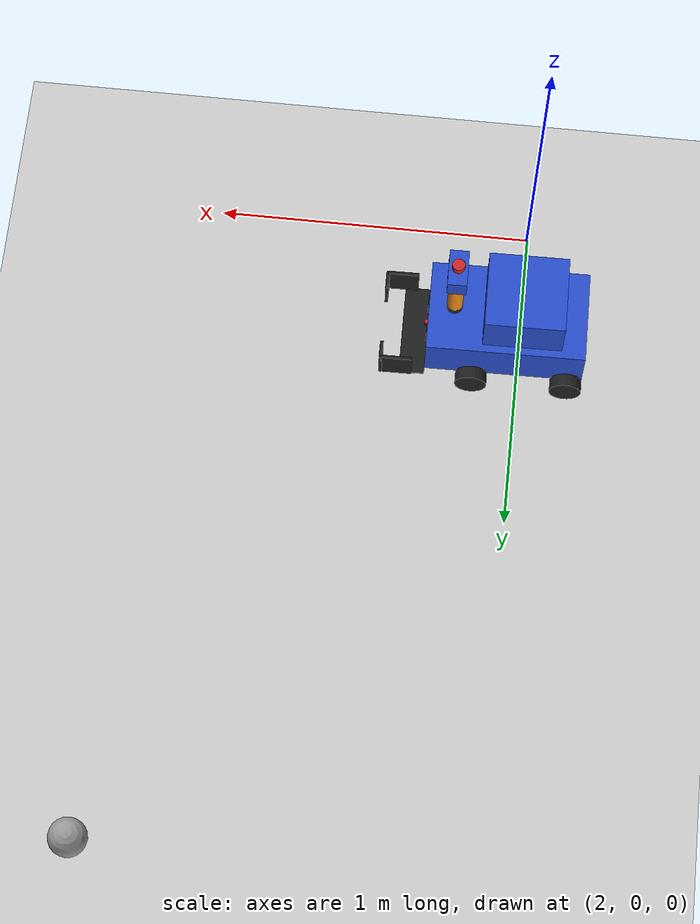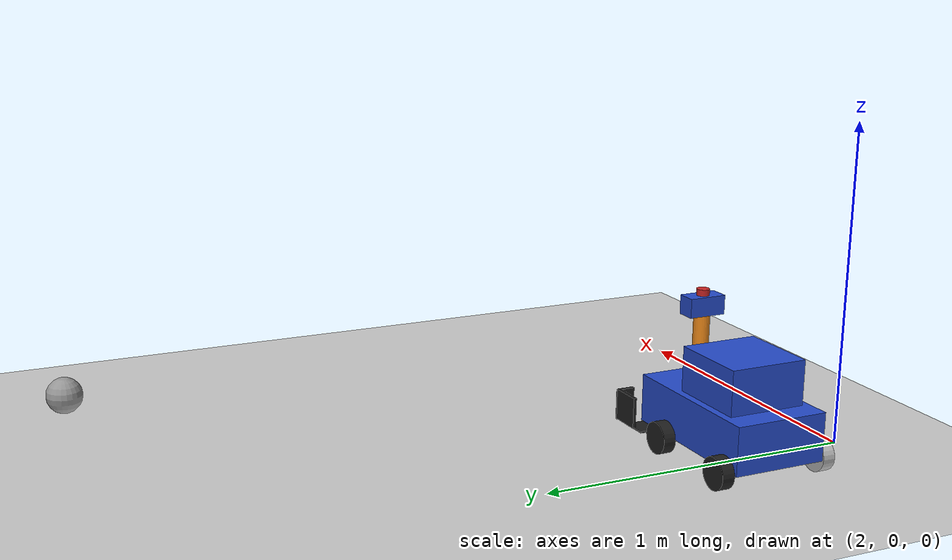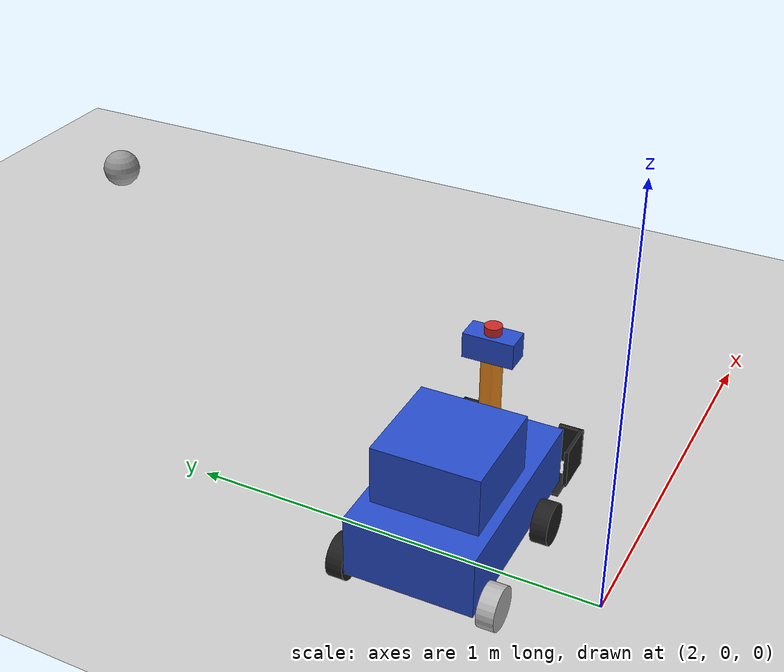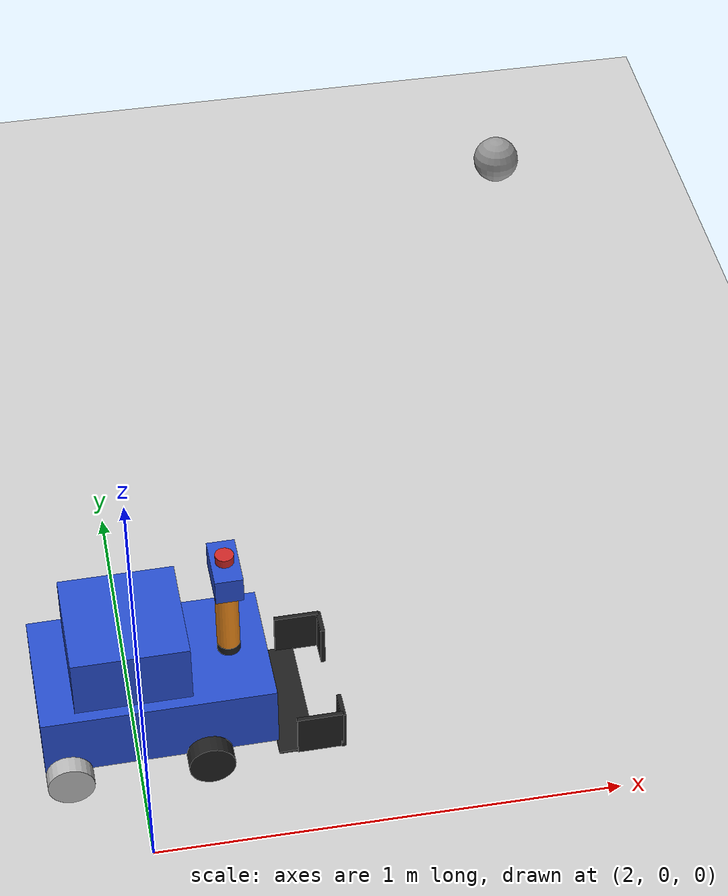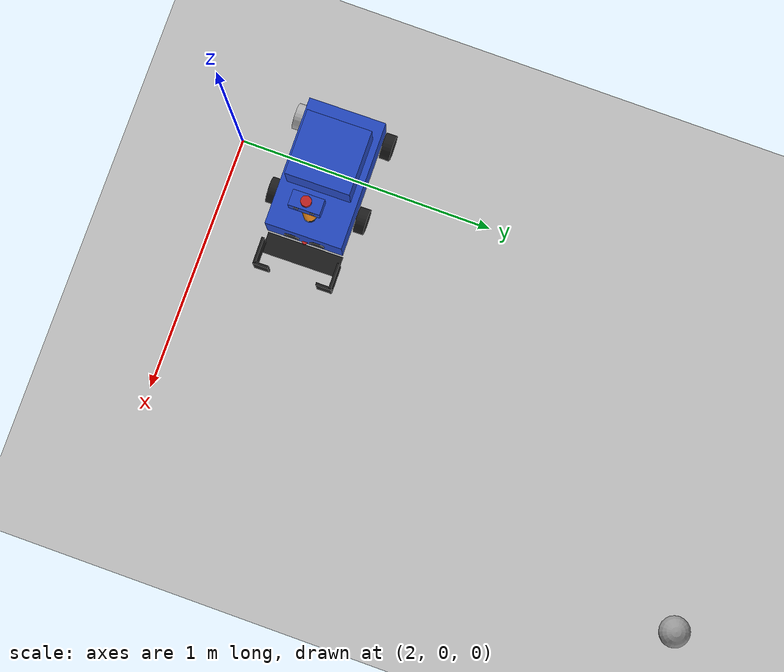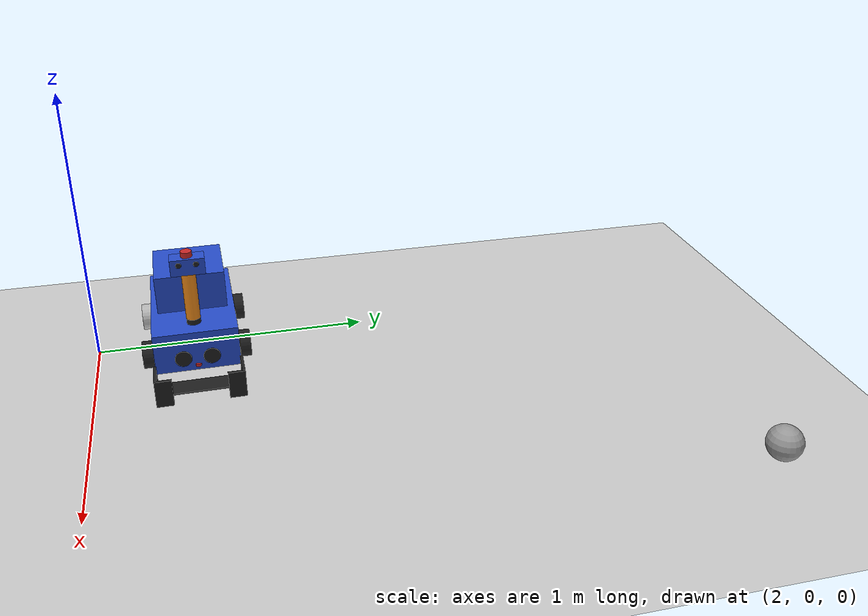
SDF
<sdf version="1.7">
 <world name="default">
  <model name="ground_plane">
   <static>1</static>
   <link name="link">
    <collision name="collision">
     <geometry><plane><normal>0 0 1</normal><size>100 100</size></plane></geometry>
     <surface>
      <contact><collide_bitmask>65535</collide_bitmask></contact>
      <friction><ode><mu>100</mu><mu2>50</mu2></ode></friction>
     </surface>
    </collision>
    <visual name="visual">
     <cast_shadows>0</cast_shadows>
     <geometry><plane><normal>0 0 1</normal><size>100 100</size></plane></geometry>
     <material>
      <script><uri>file://media/materials/scripts/gazebo.material</uri><name>Gazebo/Grey</name></script>
     </material>
    </visual>
   </link>
  </model>
  <model name="ros2_ws">
   <link name="base_link">
    <inertial>
     <pose>0.212828 4e-06 0.090281 0 -0 0</pose>
     <mass>13.112</mass>
     <inertia>
      <ixx>0.231664</ixx>
      <ixy>-1.16086e-05</ixy>
      <ixz>0.0239536</ixz>
      <iyy>0.312785</iyy>
      <iyz>2.01407e-06</iyz>
      <izz>0.366143</izz>
     </inertia>
    </inertial>
    <collision name="base_link_fixed_joint_lump__chassis_collision">
     <pose>0.2 0 0.075 0 -0 0</pose>
     <geometry><box><size>0.5 0.3 0.15</size></box></geometry>
    </collision>
    <collision name="base_link_fixed_joint_lump__back_collision_1">
     <pose>0.15 0 0.22 0 -0 0</pose>
     <geometry><box><size>0.25 0.25 0.14</size></box></geometry>
    </collision>
    <collision name="base_link_fixed_joint_lump__laser_framenew_collision_2">
     <pose>0.45 0 0.02 0 -0 0</pose>
     <geometry><cylinder><length>0.01</length><radius>0.01</radius></cylinder></geometry>
    </collision>
    <collision name="base_link_fixed_joint_lump__support_collision_3">
     <pose>0.37 0 0.16 0 -0 0</pose>
     <geometry><cylinder><length>0.02</length><radius>0.025</radius></cylinder></geometry>
    </collision>
    <collision name="base_link_fixed_joint_lump__support1_collision_4">
     <pose>0.37 0 0.26 0 -0 0</pose>
     <geometry><cylinder><length>0.18</length><radius>0.025</radius></cylinder></geometry>
    </collision>
    <collision name="base_link_fixed_joint_lump__box_collision_5">
     <pose>0.37 0 0.38 0 -0 0</pose>
     <geometry><box><size>0.06 0.12 0.06</size></box></geometry>
    </collision>
    <collision name="base_link_fixed_joint_lump__laser_frame_collision_6">
     <pose>0.37 0 0.42 0 -0 0</pose>
     <geometry><cylinder><length>0.02</length><radius>0.02</radius></cylinder></geometry>
    </collision>
    <collision name="base_link_fixed_joint_lump__vc2_collision_7">
     <pose>0.445 0.05 0.05 3.14159 1.57079 3.14159</pose>
     <geometry><cylinder><length>0.015</length><radius>0.03</radius></cylinder></geometry>
    </collision>
    <collision name="base_link_fixed_joint_lump__dum_left_wheel_collision_8">
     <pose>0.3 0.175 0 1.5708 -0 0</pose>
     <geometry><cylinder><length>0.04</length><radius>0.05</radius></cylinder></geometry>
     <surface><friction><ode><mu>0.001</mu><mu2>0.001</mu2></ode></friction></surface>
    </collision>
    <collision name="base_link_fixed_joint_lump__dum_right_wheel_collision_9">
     <pose>0.3 -0.175 0 1.5708 -0 0</pose>
     <geometry><cylinder><length>0.04</length><radius>0.05</radius></cylinder></geometry>
     <surface><friction><ode><mu>0.001</mu><mu2>0.001</mu2></ode></friction></surface>
    </collision>
    <visual name="base_link_fixed_joint_lump__chassis_visual">
     <pose>0.2 0 0.075 0 -0 0</pose>
     <geometry><box><size>0.5 0.3 0.15</size></box></geometry>
     <material>
      <script><name>Gazebo/Blue</name><uri>file://media/materials/scripts/gazebo.material</uri></script>
     </material>
    </visual>
    <visual name="base_link_fixed_joint_lump__back_visual_1">
     <pose>0.15 0 0.22 0 -0 0</pose>
     <geometry><box><size>0.25 0.25 0.14</size></box></geometry>
     <material>
      <script><name>Gazebo/Blue</name><uri>file://media/materials/scripts/gazebo.material</uri></script>
     </material>
    </visual>
    <visual name="base_link_fixed_joint_lump__laser_framenew_visual_2">
     <pose>0.45 0 0.02 0 -0 0</pose>
     <geometry><cylinder><length>0.01</length><radius>0.01</radius></cylinder></geometry>
     <material>
      <script><name>Gazebo/Red</name><uri>file://media/materials/scripts/gazebo.material</uri></script>
     </material>
    </visual>
    <visual name="base_link_fixed_joint_lump__support_visual_3">
     <pose>0.37 0 0.16 0 -0 0</pose>
     <geometry><cylinder><length>0.02</length><radius>0.025</radius></cylinder></geometry>
     <material>
      <script><name>Gazebo/Black</name><uri>file://media/materials/scripts/gazebo.material</uri></script>
     </material>
    </visual>
    <visual name="base_link_fixed_joint_lump__support1_visual_4">
     <pose>0.37 0 0.26 0 -0 0</pose>
     <geometry><cylinder><length>0.18</length><radius>0.025</radius></cylinder></geometry>
     <material>
      <script><name>Gazebo/Orange</name><uri>file://media/materials/scripts/gazebo.material</uri></script>
     </material>
    </visual>
    <visual name="base_link_fixed_joint_lump__box_visual_5">
     <pose>0.37 0 0.38 0 -0 0</pose>
     <geometry><box><size>0.06 0.12 0.06</size></box></geometry>
     <material>
      <script><name>Gazebo/Blue</name><uri>file://media/materials/scripts/gazebo.material</uri></script>
     </material>
    </visual>
    <visual name="base_link_fixed_joint_lump__face_link_visual_6">
     <pose>0.4 0.03 0.39 3.14159 1.57079 3.14159</pose>
     <geometry><cylinder><length>0.002</length><radius>0.01</radius></cylinder></geometry>
     <material>
      <script><name>Gazebo/Black</name><uri>file://media/materials/scripts/gazebo.material</uri></script>
     </material>
    </visual>
    <visual name="base_link_fixed_joint_lump__face_link_visual_7">
     <pose>0.4 -0.03 0.39 3.14159 1.57079 3.14159</pose>
     <geometry><cylinder><length>0.002</length><radius>0.01</radius></cylinder></geometry>
     <material>
      <script><name>Gazebo/Black</name><uri>file://media/materials/scripts/gazebo.material</uri></script>
     </material>
    </visual>
    <visual name="base_link_fixed_joint_lump__laser_frame_visual_8">
     <pose>0.37 0 0.42 0 -0 0</pose>
     <geometry><cylinder><length>0.02</length><radius>0.02</radius></cylinder></geometry>
     <material>
      <script><name>Gazebo/Red</name><uri>file://media/materials/scripts/gazebo.material</uri></script>
     </material>
    </visual>
    <visual name="base_link_fixed_joint_lump__camera_link_visual_9">
     <pose>0.37 0 0.43 0 -0 0</pose>
     <geometry><box><size>1e-05 1e-05 1e-05</size></box></geometry>
     <material>
      <script><name>Gazebo/Red</name><uri>file://media/materials/scripts/gazebo.material</uri></script>
     </material>
    </visual>
    <visual name="base_link_fixed_joint_lump__vc2_visual_10">
     <pose>0.445 0.05 0.05 3.14159 1.57079 3.14159</pose>
     <geometry><cylinder><length>0.015</length><radius>0.03</radius></cylinder></geometry>
     <material>
      <script><name>Gazebo/Black</name><uri>file://media/materials/scripts/gazebo.material</uri></script>
     </material>
    </visual>
    <visual name="base_link_fixed_joint_lump__dum_left_wheel_visual_11">
     <pose>0.3 0.175 0 1.5708 -0 0</pose>
     <geometry><cylinder><length>0.04</length><radius>0.05</radius></cylinder></geometry>
     <material>
      <script><name>Gazebo/Black</name><uri>file://media/materials/scripts/gazebo.material</uri></script>
     </material>
    </visual>
    <visual name="base_link_fixed_joint_lump__dum_right_wheel_visual_12">
     <pose>0.3 -0.175 0 1.5708 -0 0</pose>
     <geometry><cylinder><length>0.04</length><radius>0.05</radius></cylinder></geometry>
     <material>
      <script><name>Gazebo/Black</name><uri>file://media/materials/scripts/gazebo.material</uri></script>
     </material>
    </visual>
    <sensor name="laser" type="ray">
     <visualize>1</visualize>
     <update_rate>4</update_rate>
     <ray>
      <scan>
       <horizontal>
        <samples>10</samples>
        <min_angle>0</min_angle>
        <max_angle>0.1</max_angle>
        <resolution>1</resolution>
       </horizontal>
       <vertical><samples>1</samples><min_angle>0</min_angle><max_angle>0</max_angle></vertical>
      </scan>
      <range><min>0.15</min><max>12</max></range>
     </ray>
     <plugin name="laser_controller" filename="libgazebo_ros_ray_sensor.so">
      <ros><argument>~/out:=scan</argument></ros>
      <output_type>sensor_msgs/LaserScan</output_type>
      <frame_name>laser_frame</frame_name>
     </plugin>
     <pose>0.45 0 0.02 0 -0 0</pose>
    </sensor>
    <sensor name="camera1" type="multicamera">
     <update_rate>60</update_rate>
     <visualize>1</visualize>
     <camera name="left">
      <horizontal_fov>1.39626</horizontal_fov>
      <image><width>640</width><height>480</height><format>R8G8B8</format></image>
      <clip><near>0.02</near><far>300</far></clip>
      <noise><type>gaussian</type><mean>0</mean><stddev>0.007</stddev></noise>
     </camera>
     <camera name="right">
      <pose>0 0.4 0 0 -0 0</pose>
      <horizontal_fov>0.7</horizontal_fov>
      <image><width>320</width><height>480</height><format>R8G8B8</format></image>
      <clip><near>0.02</near><far>300</far></clip>
      <noise><type>gaussian</type><mean>0</mean><stddev>0.007</stddev></noise>
     </camera>
     <plugin name="camera_controller" filename="libgazebo_ros_camera.so">
      <ros>
       <namespace>demo_cam</namespace>
       <remapping>mycamera/left/image_raw:=mycamera/left/image_demo</remapping>
       <remapping>mycamera/right/image_raw:=mycamera/right/image_demo</remapping>
       <remapping>mycamera/left/camera_info:=mycamera/left/camera_info_demo</remapping>
       <remapping>mycamera/right/camera_info:=mycamera/right/camera_info_demo</remapping>
      </ros>
      <camera_name>mycamera</camera_name>
     </plugin>
     <pose>0.37 0 0.43 0 -0 0</pose>
    </sensor>
    <sensor name="camera" type="depth">
     <visualize>1</visualize>
     <update_rate>10</update_rate>
     <camera>
      <horizontal_fov>1.089</horizontal_fov>
      <image><format>B8G8R8</format><width>640</width><height>480</height></image>
      <clip><near>0.05</near><far>8</far></clip>
     </camera>
     <plugin name="camera_controller" filename="libgazebo_ros_camera.so">
      <frame_name>camera_link_optical</frame_name>
      <min_depth>0.1</min_depth>
      <max_depth>100.0</max_depth>
     </plugin>
     <pose>0.37 0 0.43 0 -0 0</pose>
    </sensor>
   </link>
   <joint name="lift_joint" type="prismatic">
    <pose relative_to="base_link">0.34 0 -0.0449 0 -0 0</pose>
    <parent>base_link</parent>
    <child>lift</child>
    <axis>
     <xyz>0 0 1</xyz>
     <limit><lower>0</lower><upper>0.11</upper><effort>100</effort><velocity>100</velocity></limit>
     <dynamics><spring_reference>0</spring_reference><spring_stiffness>0</spring_stiffness></dynamics>
    </axis>
   </joint>
   <link name="lift">
    <pose relative_to="lift_joint">0 0 0 0 -0 0</pose>
    <inertial>
     <pose>0.15 0 0.002 0 -0 0</pose>
     <mass>0.1</mass>
     <inertia>
      <ixx>0.000750208</ixx>
      <ixy>0</ixy>
      <ixz>0</ixz>
      <iyy>5.35417e-05</iyy>
      <iyz>0</iyz>
      <izz>0.000803333</izz>
     </inertia>
    </inertial>
    <collision name="lift_collision">
     <pose>0.15 0 0.005 0 -0 0</pose>
     <geometry><box><size>0.08 0.3 1e-05</size></box></geometry>
     <surface><friction><ode><mu>1e-05</mu><mu2>1e-05</mu2></ode></friction></surface>
    </collision>
    <visual name="lift_visual">
     <pose>0.15 0 0.002 0 -0 0</pose>
     <geometry><box><size>0.08 0.3 0.005</size></box></geometry>
     <material>
      <script><name>Gazebo/Black</name><uri>file://media/materials/scripts/gazebo.material</uri></script>
     </material>
    </visual>
   </link>
   <joint name="forkone_joint" type="prismatic">
    <pose relative_to="lift">0.05 -0.15 0.05 0 -0 0</pose>
    <parent>lift</parent>
    <child>forkone</child>
    <axis>
     <xyz>0 1 0</xyz>
     <limit><lower>0</lower><upper>0.085</upper><effort>1000</effort><velocity>10</velocity></limit>
     <dynamics><spring_reference>0</spring_reference><spring_stiffness>0</spring_stiffness></dynamics>
    </axis>
   </joint>
   <link name="forkone">
    <pose relative_to="forkone_joint">0 0 0 0 -0 0</pose>
    <inertial>
     <pose>0.175 0.0125 0.001 0 -0 0</pose>
     <mass>0.2</mass>
     <inertia>
      <ixx>0.00022895</ixx>
      <ixy>-6.25e-05</ixy>
      <ixz>5e-06</ixz>
      <iyy>0.000376033</iyy>
      <iyz>2.5e-06</iyz>
      <izz>0.00027125</izz>
     </inertia>
    </inertial>
    <collision name="forkone_collision">
     <pose>0.15 0 0.002 0 -0 0</pose>
     <geometry><box><size>0.1 0.01 0.1</size></box></geometry>
     <surface><friction><ode><mu>0.10001</mu><mu2>0.10001</mu2></ode></friction></surface>
    </collision>
    <collision name="forkone_fixed_joint_lump__cap1_collision_1">
     <pose>0.2 0.025 0 0 -0 0</pose>
     <geometry><box><size>0.01 0.06 0.1</size></box></geometry>
    </collision>
    <visual name="forkone_visual">
     <pose>0.15 0 0.002 0 -0 0</pose>
     <geometry><box><size>0.1 0.01 0.1</size></box></geometry>
     <material>
      <script><name>Gazebo/Black</name><uri>file://media/materials/scripts/gazebo.material</uri></script>
     </material>
    </visual>
    <visual name="forkone_fixed_joint_lump__cap1_visual_1">
     <pose>0.2 0.025 0 0 -0 0</pose>
     <geometry><box><size>0.01 0.06 0.1</size></box></geometry>
     <material>
      <script><name>Gazebo/Black</name><uri>file://media/materials/scripts/gazebo.material</uri></script>
     </material>
    </visual>
   </link>
   <joint name="forktwo_joint" type="prismatic">
    <pose relative_to="lift">0.05 0.15 0.05 0 -0 0</pose>
    <parent>lift</parent>
    <child>forktwo</child>
    <axis>
     <xyz>0 -1 0</xyz>
     <limit><lower>0</lower><upper>0.085</upper><effort>1000</effort><velocity>10</velocity></limit>
     <dynamics><spring_reference>0</spring_reference><spring_stiffness>0</spring_stiffness></dynamics>
    </axis>
   </joint>
   <link name="forktwo">
    <pose relative_to="forktwo_joint">0 0 0 0 -0 0</pose>
    <inertial>
     <pose>0.175 -0.0125 0.001 0 -0 0</pose>
     <mass>0.2</mass>
     <inertia>
      <ixx>0.000219783</ixx>
      <ixy>6.25e-05</ixy>
      <ixz>5e-06</ixz>
      <iyy>0.000376033</iyy>
      <iyz>-2.5e-06</iyz>
      <izz>0.000262083</izz>
     </inertia>
    </inertial>
    <collision name="forktwo_collision">
     <pose>0.15 0 0.002 0 -0 0</pose>
     <geometry><box><size>0.1 0.01 0.1</size></box></geometry>
     <surface><friction><ode><mu>0.10001</mu><mu2>0.10001</mu2></ode></friction></surface>
    </collision>
    <collision name="forktwo_fixed_joint_lump__cap_collision_1">
     <pose>0.2 -0.025 0 0 -0 0</pose>
     <geometry><box><size>0.01 0.06 0.1</size></box></geometry>
    </collision>
    <visual name="forktwo_visual">
     <pose>0.15 0 0.002 0 -0 0</pose>
     <geometry><box><size>0.1 0.01 0.1</size></box></geometry>
     <material>
      <script><name>Gazebo/Black</name><uri>file://media/materials/scripts/gazebo.material</uri></script>
     </material>
    </visual>
    <visual name="forktwo_fixed_joint_lump__cap_visual_1">
     <pose>0.2 -0.025 0 0 -0 0</pose>
     <geometry><box><size>0.01 0.06 0.1</size></box></geometry>
     <material>
      <script><name>Gazebo/Black</name><uri>file://media/materials/scripts/gazebo.material</uri></script>
     </material>
    </visual>
   </link>
   <joint name="vc1_joint" type="prismatic">
    <pose relative_to="base_link">0.445 -0.05 0.05 3.14159 1.57079 3.14159</pose>
    <parent>base_link</parent>
    <child>vc1</child>
    <axis>
     <xyz>0 1 0</xyz>
     <limit><lower>0</lower><upper>0</upper><effort>100</effort><velocity>10</velocity></limit>
     <dynamics><spring_reference>0</spring_reference><spring_stiffness>0</spring_stiffness></dynamics>
    </axis>
   </joint>
   <link name="vc1">
    <pose relative_to="vc1_joint">0 0 0 0 -0 0</pose>
    <inertial>
     <mass>0.001</mass>
     <inertia>
      <ixx>2.4375e-07</ixx>
      <ixy>0</ixy>
      <ixz>0</ixz>
      <iyy>2.4375e-07</iyy>
      <iyz>0</iyz>
      <izz>4.5e-07</izz>
     </inertia>
    </inertial>
    <collision name="vc1_collision">
     <geometry><cylinder><length>0.015</length><radius>0.03</radius></cylinder></geometry>
    </collision>
    <visual name="vc1_visual">
     <geometry><cylinder><length>0.015</length><radius>0.03</radius></cylinder></geometry>
     <material>
      <script><name>Gazebo/Black</name><uri>file://media/materials/scripts/gazebo.material</uri></script>
     </material>
    </visual>
   </link>
   <joint name="left_wheel_joint" type="revolute">
    <pose relative_to="base_link">0 0.175 0 -1.5708 0 0</pose>
    <parent>base_link</parent>
    <child>left_wheel</child>
    <axis>
     <xyz>0 0 1</xyz>
     <limit><lower>-1e+16</lower><upper>1e+16</upper></limit>
     <dynamics><spring_reference>0</spring_reference><spring_stiffness>0</spring_stiffness></dynamics>
    </axis>
   </joint>
   <link name="left_wheel">
    <pose relative_to="left_wheel_joint">0 0 0 0 -0 0</pose>
    <inertial>
     <mass>1.1</mass>
     <inertia>
      <ixx>0.000834167</ixx>
      <ixy>0</ixy>
      <ixz>0</ixz>
      <iyy>0.000834167</iyy>
      <iyz>0</iyz>
      <izz>0.001375</izz>
     </inertia>
    </inertial>
    <collision name="left_wheel_collision">
     <geometry><cylinder><length>0.04</length><radius>0.05</radius></cylinder></geometry>
    </collision>
    <visual name="left_wheel_visual">
     <geometry><cylinder><length>0.04</length><radius>0.05</radius></cylinder></geometry>
     <material>
      <script><name>Gazebo/Black</name><uri>file://media/materials/scripts/gazebo.material</uri></script>
     </material>
    </visual>
   </link>
   <joint name="right_wheel_joint" type="revolute">
    <pose relative_to="base_link">0 -0.175 0 1.5708 -0 0</pose>
    <parent>base_link</parent>
    <child>right_wheel</child>
    <axis>
     <xyz>0 0 -1</xyz>
     <limit><lower>-1e+16</lower><upper>1e+16</upper></limit>
     <dynamics><spring_reference>0</spring_reference><spring_stiffness>0</spring_stiffness></dynamics>
    </axis>
   </joint>
   <link name="right_wheel">
    <pose relative_to="right_wheel_joint">0 0 0 0 -0 0</pose>
    <inertial>
     <mass>1.1</mass>
     <inertia>
      <ixx>0.00190667</ixx>
      <ixy>0</ixy>
      <ixz>0</ixz>
      <iyy>0.00190667</iyy>
      <iyz>0</iyz>
      <izz>0.00352</izz>
     </inertia>
    </inertial>
    <collision name="right_wheel_collision">
     <geometry><cylinder><length>0.04</length><radius>0.05</radius></cylinder></geometry>
    </collision>
    <visual name="right_wheel_visual">
     <geometry><cylinder><length>0.04</length><radius>0.05</radius></cylinder></geometry>
    </visual>
   </link>
   <plugin name="gazebo_ros_joint_pose_trajectory" filename="libgazebo_ros_joint_pose_trajectory.so">
    <ros><namespace>/vision</namespace><remapping>set_joint_trajectory:=set_trajectory_demo</remapping></ros>
    <update_rate>2</update_rate>
   </plugin>
   <plugin name="vacuum_gripper" filename="libgazebo_ros_vacuum_gripper.so">
    <ros>
     <namespace>/demo</namespace>
     <remapping>switch:=switch_demo</remapping>
     <remapping>grasping:=grasping_demo</remapping>
    </ros>
    <link_name>vc1</link_name>
    <max_distance>0.8</max_distance>
    <fixed>base_link</fixed>
   </plugin>
   <plugin name="vacuum_gripper" filename="libgazebo_ros_vacuum_gripper.so">
    <ros>
     <namespace>/demo1</namespace>
     <remapping>switch:=switch_demo</remapping>
     <remapping>grasping:=grasping_demo</remapping>
    </ros>
    <link_name>vc2</link_name>
    <max_distance>0.8</max_distance>
    <fixed>base_link</fixed>
   </plugin>
   <plugin name="vacuum_gripper" filename="libgazebo_ros_vacuum_gripper.so">
    <ros>
     <namespace>/fork</namespace>
     <remapping>switch:=switch_demo</remapping>
     <remapping>grasping:=grasping_demo</remapping>
    </ros>
    <link_name>forkone</link_name>
    <max_distance>0.1</max_distance>
    <fixed>base_link</fixed>
   </plugin>
   <static>0</static>
   <plugin name="gazebo_ros2_control" filename="libgazebo_ros2_control.so">
    <parameters>/home/dhanush/Desktop/ros2_ws/install/vision/share/vision/config/my_controllers.yaml</parameters>
   </plugin>
   <pose>1.84651 0.359912 0.05 0 1e-06 0.011779</pose>
  </model>
  <model name="unit_sphere">
   <pose>3.19984 2.14683 0.060022 0 -0 0</pose>
   <link name="link">
    <inertial>
     <mass>1</mass>
     <inertia><ixx>0.1</ixx><ixy>0</ixy><ixz>0</ixz><iyy>0.1</iyy><iyz>0</iyz><izz>0.1</izz></inertia>
    </inertial>
    <collision name="collision"><geometry><sphere><radius>0.0600225</radius></sphere></geometry></collision>
    <visual name="visual">
     <geometry><sphere><radius>0.0600225</radius></sphere></geometry>
     <material>
      <script><name>Gazebo/Grey</name><uri>file://media/materials/scripts/gazebo.material</uri></script>
     </material>
    </visual>
   </link>
  </model>
 </world>
</sdf>
